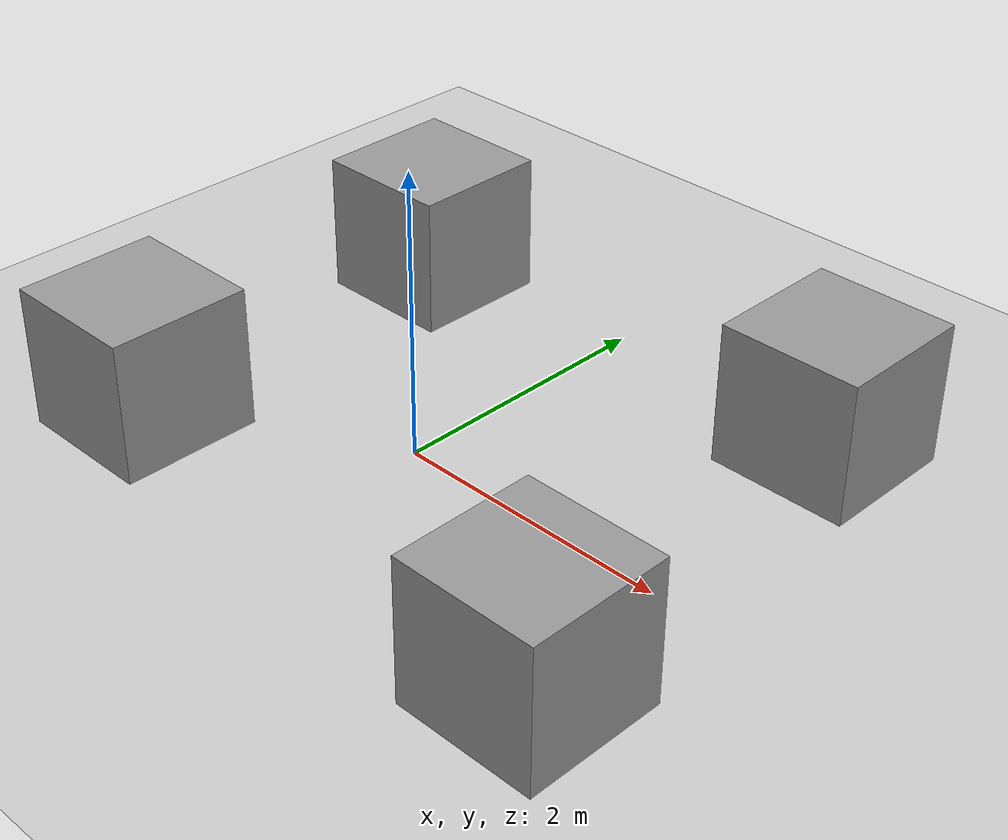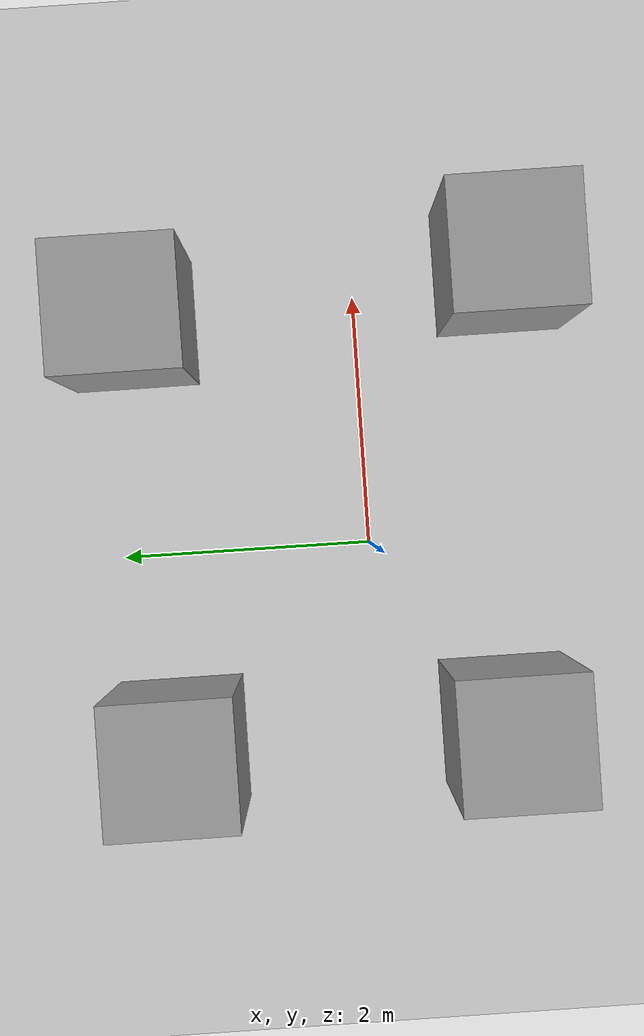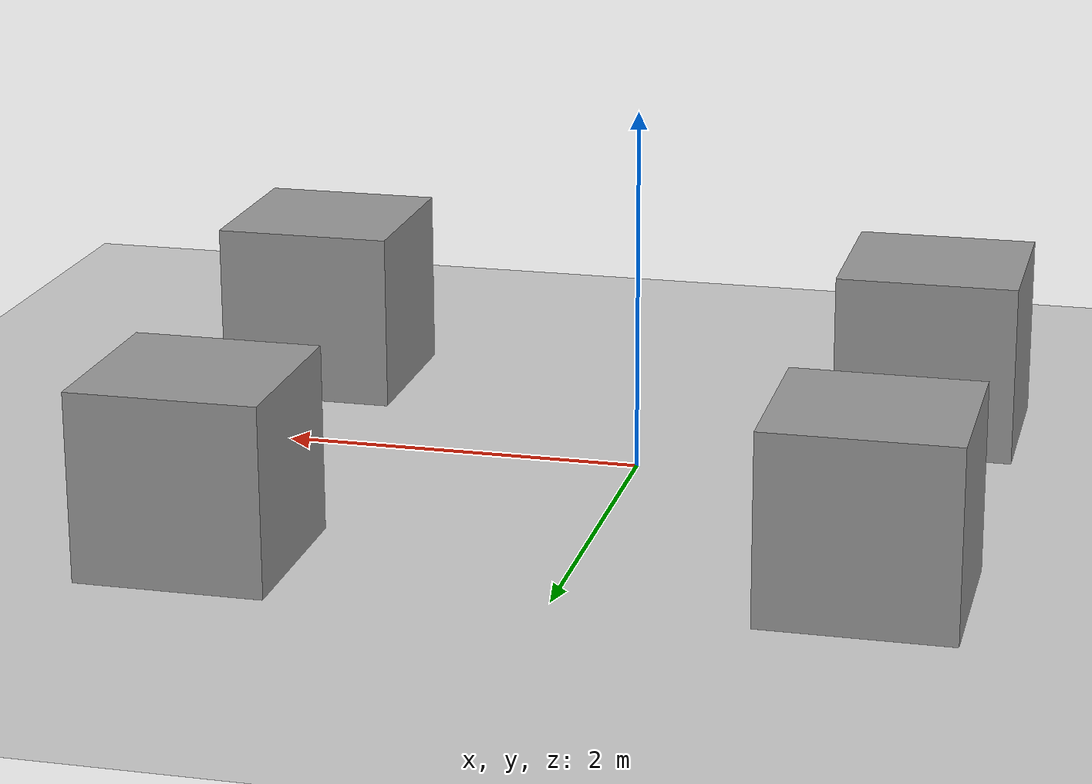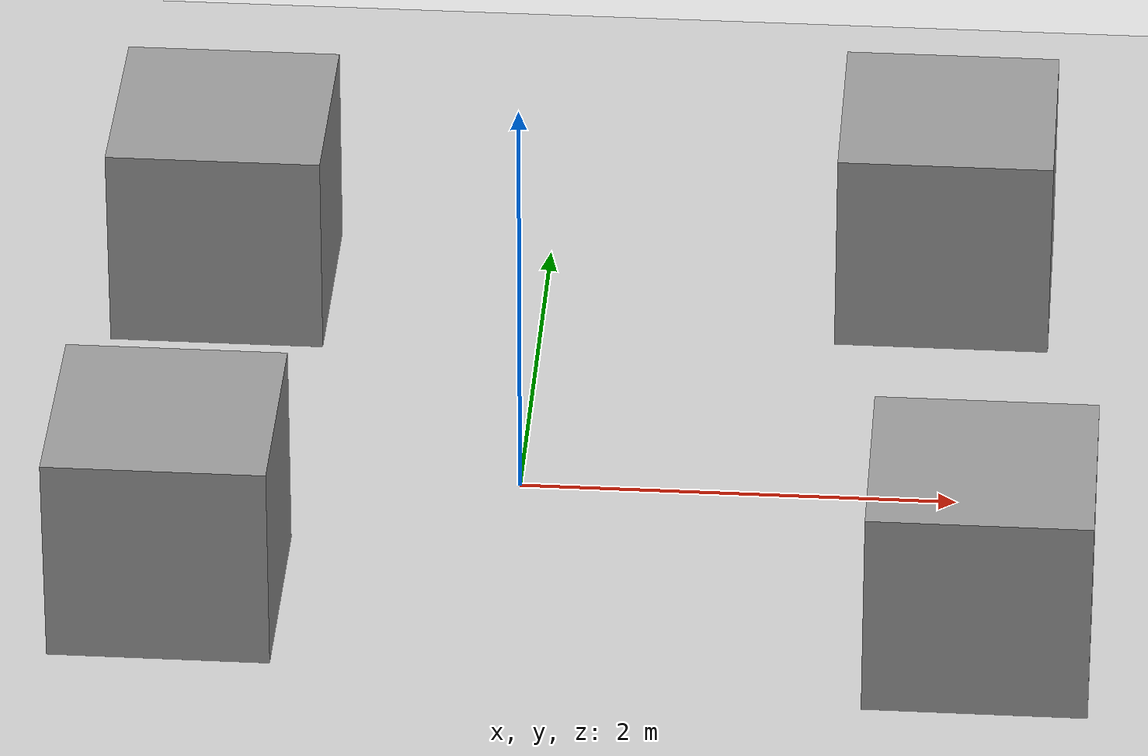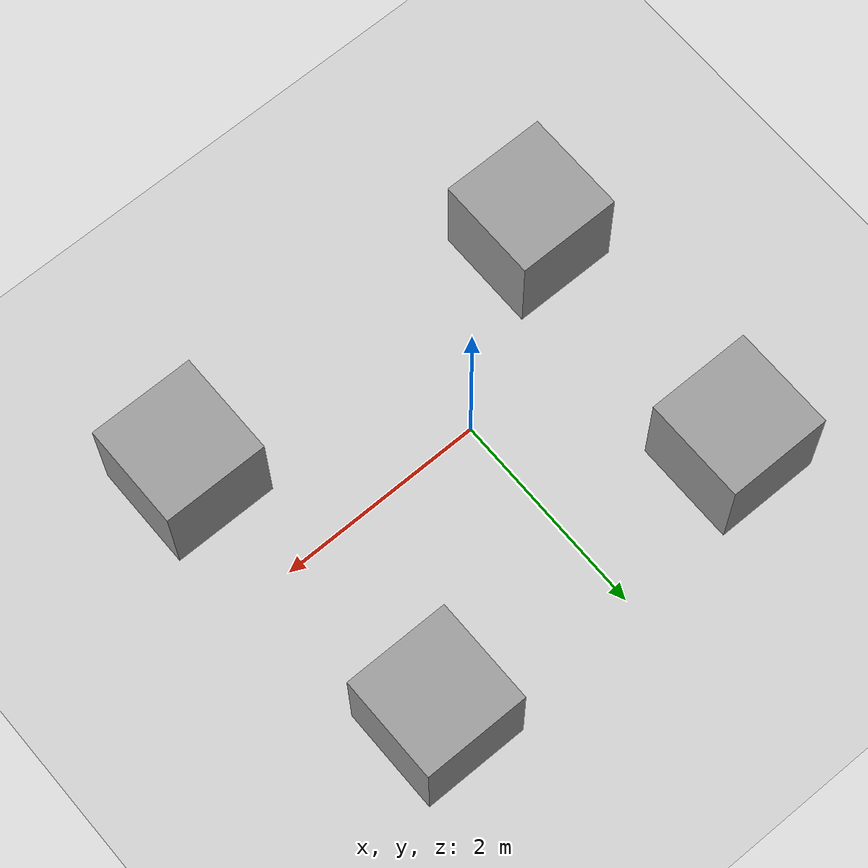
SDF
<sdf version="1.7">
 <world name="default">
  <light name="sun" type="directional">
   <pose>0 0 10 0 -0 0</pose>
   <diffuse>0.8 0.8 0.8 1</diffuse>
   <specular>0.2 0.2 0.2 1</specular>
   <attenuation>
    <range>1000</range>
    <constant>0.9</constant>
    <linear>0.01</linear>
    <quadratic>0.001</quadratic>
   </attenuation>
   <direction>-0.5 0.1 -0.9</direction>
   <spot><inner_angle>0</inner_angle><outer_angle>0</outer_angle><falloff>0</falloff></spot>
  </light>
  <model name="ground_plane">
   <static>1</static>
   <link name="link">
    <collision name="collision">
     <geometry><plane><normal>0 0 1</normal><size>100 100</size></plane></geometry>
     <surface>
      <contact><collide_bitmask>65535</collide_bitmask></contact>
      <friction><ode><mu>100</mu><mu2>50</mu2></ode></friction>
     </surface>
    </collision>
    <visual name="visual">
     <cast_shadows>0</cast_shadows>
     <geometry><plane><normal>0 0 1</normal><size>100 100</size></plane></geometry>
     <material>
      <script><uri>file://media/materials/scripts/gazebo.material</uri><name>Gazebo/Grey</name></script>
     </material>
    </visual>
   </link>
  </model>
  <gravity>0 0 -9.8</gravity>
  <magnetic_field>6e-06 2.3e-05 -4.2e-05</magnetic_field>
  <atmosphere type="adiabatic"/>
  <physics type="ode">
   <max_step_size>0.001</max_step_size>
   <real_time_factor>1</real_time_factor>
   <real_time_update_rate>1000</real_time_update_rate>
  </physics>
  <scene><ambient>0.4 0.4 0.4 1</ambient><background>0.7 0.7 0.7 1</background><shadows>1</shadows></scene>
  <spherical_coordinates>
   <surface_model>EARTH_WGS84</surface_model>
   <latitude_deg>0</latitude_deg>
   <longitude_deg>0</longitude_deg>
   <elevation>0</elevation>
   <heading_deg>0</heading_deg>
  </spherical_coordinates>
  <model name="unit_box">
   <pose>-1.50507 -1.00135 0.499995 0 -1e-05 0</pose>
   <link name="link">
    <inertial>
     <mass>1</mass>
     <inertia>
      <ixx>0.166667</ixx>
      <ixy>0</ixy>
      <ixz>0</ixz>
      <iyy>0.166667</iyy>
      <iyz>0</iyz>
      <izz>0.166667</izz>
     </inertia>
    </inertial>
    <collision name="collision"><geometry><box><size>1 1 1</size></box></geometry></collision>
    <visual name="visual">
     <geometry><box><size>1 1 1</size></box></geometry>
     <material>
      <script><name>Gazebo/Grey</name><uri>file://media/materials/scripts/gazebo.material</uri></script>
     </material>
    </visual>
   </link>
  </model>
  <model name="unit_box_0">
   <pose>2.13768 -1.17303 0.499995 0 1e-05 0</pose>
   <link name="link">
    <inertial>
     <mass>1</mass>
     <inertia>
      <ixx>0.166667</ixx>
      <ixy>0</ixy>
      <ixz>0</ixz>
      <iyy>0.166667</iyy>
      <iyz>0</iyz>
      <izz>0.166667</izz>
     </inertia>
    </inertial>
    <collision name="collision"><geometry><box><size>1 1 1</size></box></geometry></collision>
    <visual name="visual">
     <geometry><box><size>1 1 1</size></box></geometry>
     <material>
      <script><name>Gazebo/Grey</name><uri>file://media/materials/scripts/gazebo.material</uri></script>
     </material>
    </visual>
   </link>
  </model>
  <model name="unit_box_1">
   <pose>-1.51176 1.60427 0.5 0 -0 0</pose>
   <link name="link">
    <inertial>
     <mass>1</mass>
     <inertia>
      <ixx>0.166667</ixx>
      <ixy>0</ixy>
      <ixz>0</ixz>
      <iyy>0.166667</iyy>
      <iyz>0</iyz>
      <izz>0.166667</izz>
     </inertia>
    </inertial>
    <collision name="collision"><geometry><box><size>1 1 1</size></box></geometry></collision>
    <visual name="visual">
     <geometry><box><size>1 1 1</size></box></geometry>
     <material>
      <script><name>Gazebo/Grey</name><uri>file://media/materials/scripts/gazebo.material</uri></script>
     </material>
    </visual>
   </link>
  </model>
  <model name="unit_box_2">
   <pose>1.88095 1.79739 0.499995 0 1e-05 0</pose>
   <link name="link">
    <inertial>
     <mass>1</mass>
     <inertia>
      <ixx>0.166667</ixx>
      <ixy>0</ixy>
      <ixz>0</ixz>
      <iyy>0.166667</iyy>
      <iyz>0</iyz>
      <izz>0.166667</izz>
     </inertia>
    </inertial>
    <collision name="collision"><geometry><box><size>1 1 1</size></box></geometry></collision>
    <visual name="visual">
     <geometry><box><size>1 1 1</size></box></geometry>
     <material>
      <script><name>Gazebo/Grey</name><uri>file://media/materials/scripts/gazebo.material</uri></script>
     </material>
    </visual>
   </link>
  </model>
  <light name="user_point_light_0" type="point">
   <pose>0.013688 -0.015977 1 0 -0 0</pose>
   <diffuse>0.5 0.5 0.5 1</diffuse>
   <specular>0.1 0.1 0.1 1</specular>
   <attenuation>
    <range>20</range>
    <constant>0.5</constant>
    <linear>0.01</linear>
    <quadratic>0.001</quadratic>
   </attenuation>
   <cast_shadows>0</cast_shadows>
   <direction>0 0 -1</direction>
  </light>
 </world>
</sdf>
